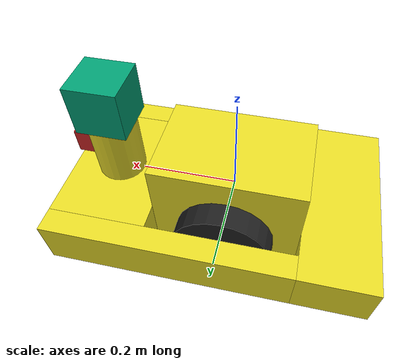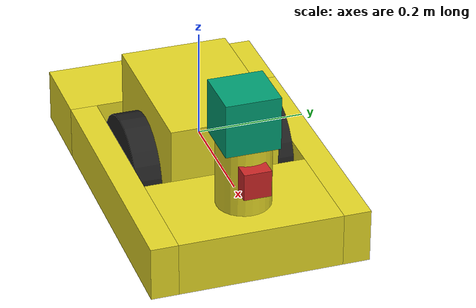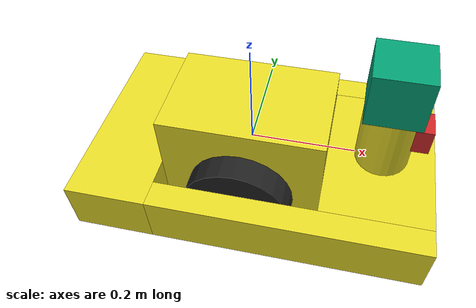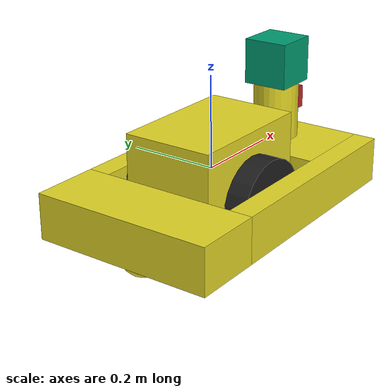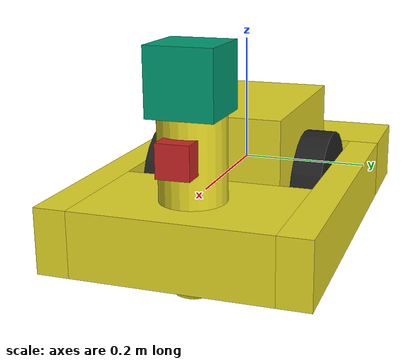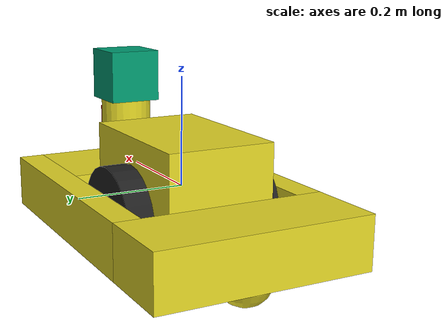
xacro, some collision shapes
<?xml version='1.0'?>

<robot name="my_robot3" xmlns:xacro="http://www.ros.org/wiki/xacro">

<gazebo reference="left_wheel">
    <material>Gazebo/Black</material>
</gazebo>

<gazebo reference="right_wheel">
    <material>Gazebo/Black</material>
</gazebo>

<gazebo reference="chassis">
    <material>Gazebo/Yellow</material>
</gazebo>

<gazebo reference="tower_chassis">
    <material>Gazebo/Yellow</material>
</gazebo>

<gazebo reference="chassis_rear_lane">
    <material>Gazebo/Yellow</material>
</gazebo>

<gazebo reference="chassis_right_lane">
    <material>Gazebo/Yellow</material>
</gazebo>

<gazebo reference="chassis_left_lane">
    <material>Gazebo/Yellow</material>
</gazebo>

<gazebo reference="tower">
    <material>Gazebo/Yellow</material>
</gazebo>

<gazebo reference="camera">
    <material>Gazebo/Red</material>
</gazebo>

  <xacro:include filename="$(find my_robot)/urdf/my_robot3.gazebo" />

  <link name="robot_footprint"></link>

  <joint name="robot_footprint_joint" type="fixed">
    <origin xyz="0 0 0" rpy="0 0 0" />
    <parent link="robot_footprint"/>
    <child link="chassis" />
  </joint>

  <joint name="tower_joint" type="fixed">
    <origin xyz="0 0 .125" rpy="0 0 0" />
    <parent link="tower_chassis"/>
    <child link="tower" />
  </joint>

  <joint name="tower_chassis_joint" type="fixed">
    <origin xyz=".25 0 -.05" rpy="0 0 0" />
    <parent link="chassis"/>
    <child link="tower_chassis" />
  </joint>

  <joint name="chassis_left_lane_joint" type="fixed">
    <origin xyz="-.15 .175 0" rpy="0 0 0"/>
    <axis xyz="1 1 1"/>
    <parent link="tower_chassis"/>
    <child link="chassis_left_lane"/>
  </joint>

  <joint name="chassis_right_lane_joint" type="fixed">
    <origin xyz="-.15 -.175 0" rpy="0 0 0"/>
    <axis xyz="1 1 1"/>
    <parent link="tower_chassis"/>
    <child link="chassis_right_lane"/>
  </joint>

  <joint name="chassis_rear_lane_joint" type="fixed">
    <origin xyz="-.225 0 -.05" rpy="0 0 0"/>
    <axis xyz="1 1 1"/>
    <parent link="chassis"/>
    <child link="chassis_rear_lane"/>
  </joint>

  <joint type="continuous" name="left_wheel_hinge">
    <origin xyz="0 0.125 -.05" rpy="0 0 0"/>
    <child link="left_wheel"/>
    <parent link="chassis"/>
    <axis xyz="0 1 0" rpy="0 0 0"/>
    <limit effort="10000" velocity="1000"/>
    <dynamics damping="1.0" friction="1.0"/>
  </joint>

  <joint type="continuous" name="right_wheel_hinge">
    <origin xyz="0 -0.125 -.05" rpy="0 0 0"/>
    <child link="right_wheel"/>
    <parent link="chassis"/>
    <axis xyz="0 1 0" rpy="0 0 0"/>
    <limit effort="10000" velocity="1000"/>
    <dynamics damping="1.0" friction="1.0"/>
  </joint>

  <joint name="camera_joint" type="fixed">
    <origin xyz=".05 0 0" rpy="0 0 0"/>
    <axis xyz="0 1 0"/>
    <parent link="tower"/>
    <child link="camera"/>
  </joint>

  <joint name="hokuyo_joint" type="fixed">
    <origin xyz="0 0 0.1" rpy="0 0 0"/>
    <axis xyz="0 1 0"/>
    <parent link="tower"/>
    <child link="hokuyo"/>
  </joint>

  <link name='chassis'>
    <pose>0 0 0.05 0 0 0</pose>

    <inertial>
      <mass value="15"/>
      <origin xyz="-.005 0 -0.027" rpy=" 0 0 0"/>
      <inertia
          ixx="0.1" ixy="0" ixz="0"
          iyy="0.1" iyz="0"
          izz="0.1"
      />
    </inertial>

    <collision name='chassis_collision'>
      <mass value="15"/>
      <origin xyz="0 0 0" rpy=" 0 0 0"/>
      <geometry>
        <box size=".3 .2 .2"/>
      </geometry>
    </collision>

    <visual name='chassis_visual'>
      <mass value="15"/>
      <origin xyz="0 0 0" rpy=" 0 0 0"/>
      <geometry>
        <box size=".3 .2 .2"/>
      </geometry>

    </visual>
  </link>

  <link name='chassis_left_lane'>
    <pose>0 0 0.05 0 0 0</pose>

    <inertial>
      <mass value="0.5"/>
      <origin xyz="0.0 0 -0.5" rpy=" 0 0 0"/>
      <inertia
          ixx="0.1" ixy="0" ixz="0"
          iyy="0.1" iyz="0"
          izz="0.1"
      />
    </inertial>

    <collision name='chassis_left_lane_collision'>
	<mass value="0.5"/>
      <origin xyz="0 0 0" rpy=" 0 0 0"/>
      <geometry>
        <box size=".5 .05 .1"/>
      </geometry>
    </collision>

    <visual name='chassis_left_lane_visual'>
	<mass value="0.5"/>
      <origin xyz="0 0 0" rpy=" 0 0 0"/>
      <geometry>
        <box size=".5 .05 .1"/>
      </geometry>

    </visual>
  </link>

  <link name='chassis_right_lane'>
    <pose>0 0 0.05 0 0 0</pose>

    <inertial>
      <mass value="0.5"/>
      <origin xyz="0.0 0 0" rpy=" 0 0 0"/>
      <inertia
          ixx="0.1" ixy="0" ixz="0"
          iyy="0.1" iyz="0"
          izz="0.1"
      />
    </inertial>

    <collision name='chassis_right_lane_collision'>
	<mass value="0.5"/>
      <origin xyz="0 0 0" rpy=" 0 0 0"/>
      <geometry>
        <box size=".5 .05 .1"/>
      </geometry>
    </collision>

    <visual name='chassis_right_lane_visual'>
	<mass value="0.5"/>
      <origin xyz="0 0 0" rpy=" 0 0 0"/>
      <geometry>
        <box size=".5 .05 .1"/>
      </geometry>

    </visual>
  </link>

  <link name='chassis_rear_lane'>
    <pose>0 0 0.05 0 0 0</pose>

    <inertial>
      <mass value="0.5"/>
      <origin xyz="0.0 0 0" rpy=" 0 0 0"/>
      <inertia
          ixx="0.1" ixy="0" ixz="0"
          iyy="0.1" iyz="0"
          izz="0.1"
      />
    </inertial>

    <collision name='chassis_rear_lane_collision'>
	 <mass value="0.5"/>
      <origin xyz="0 0 0" rpy=" 0 0 0"/>
      <geometry>
        <box size=".15 .4 .1"/>
      </geometry>
    </collision>

    <visual name='chassis_rear_lane_visual'>
 	<mass value="0.5"/>
      <origin xyz="0 0 0" rpy=" 0 0 0"/>
      <geometry>
        <box size=".15 .4 .1"/>
      </geometry>

    </visual>

    <collision name='rear_caster_collision'>
	<mass value="0"/>
      <origin xyz="0 0 -0.05" rpy=" 0 0 0"/>
      <geometry>
        <sphere radius="0.0499"/>
      </geometry>
    </collision>

    <visual name='rear_caster_visual'>
	<mass value="0"/>
      <origin xyz="0 0 -0.05" rpy=" 0 0 0"/>
      <geometry>
        <sphere radius="0.05"/>
      </geometry>
    </visual>

  </link>

  <link name='left_wheel'>
    <visual name='left_wheel_visual'>
	<origin xyz="0 0 0" rpy="0 1.5707 1.5707"/>
	<geometry>
		<cylinder radius="0.1" length="0.048"/>
	</geometry>

	<mass value="1.0"/>
	<inertia
          ixx="0.1" ixy="0" ixz="0"
          iyy="0.1" iyz="0"
          izz="0.1"
        />
     </visual>

    <collision name='left_wheel_collision'>
	<origin xyz="0 0 0" rpy="0 1.5707 1.5707"/>
	<geometry>
		<cylinder radius="0.1" length="0.048"/>
	</geometry>
	<mass value="1.0"/>
	<inertia
          ixx="0.1" ixy="0" ixz="0"
          iyy="0.1" iyz="0"
          izz="0.1"
        />
     </collision>

    <inertial name='left_wheel_inertial'>
	<origin xyz="0 0 0" rpy="0 1.5707 1.5707"/>
	<geometry>
		<cylinder radius="0.1" length="0.048"/>
	</geometry>
	<mass value="1.0"/>
	<inertia
          ixx="0.1" ixy="0" ixz="0"
          iyy="0.1" iyz="0"
          izz="0.1"
        />
     </inertial>
  </link>

  <link name='right_wheel'>
    <visual name='right_wheel_visual'>
	<origin xyz="0 0 0" rpy="0 1.5707 1.5707"/>
	<geometry>
		<cylinder radius="0.1" length="0.048"/>
	</geometry>

	<mass value="1.0"/>
	<inertia
          ixx="0.1" ixy="0" ixz="0"
          iyy="0.1" iyz="0"
          izz="0.1"
        />
     </visual>

    <collision name='right_wheel_collision'>
	<origin xyz="0 0 0" rpy="0 1.5707 1.5707"/>
	<geometry>
		<cylinder radius="0.1" length="0.048"/>
	</geometry>
	<mass value="1.0"/>
	<inertia
          ixx="0.1" ixy="0" ixz="0"
          iyy="0.1" iyz="0"
          izz="0.1"
        />
     </collision>

    <inertial name='right_wheel_inertial'>
	<origin xyz="0 0 0" rpy="0 1.5707 1.5707"/>
	<geometry>
		<cylinder radius="0.1" length="0.048"/>
	</geometry>
	<mass value="1.0"/>
	<inertia
          ixx="0.1" ixy="0" ixz="0"
          iyy="0.1" iyz="0"
          izz="0.1"
        />
     </inertial>
  </link>

  <link name='tower'>
    <visual name='tower_visual'>
      <origin xyz="0 0 0" rpy="0 0 0"/>
      <geometry>
        <cylinder radius="0.05" length="0.15"/>
      </geometry>

      <mass value="0.2"/>
      <inertia
              ixx="0.1" ixy="0" ixz="0"
              iyy="0.1" iyz="0"
              izz="0.1"
            />
    </visual>

    <collision name='tower_collision'>
      <origin xyz="0 0 0" rpy="0 0 0"/>
      <geometry>
        <cylinder radius="0.05" length="0.15"/>
      </geometry>
      <mass value="0.2"/>
      <inertia
              ixx="0.1" ixy="0" ixz="0"
              iyy="0.1" iyz="0"
              izz="0.1"
            />
    </collision>

    <inertial name='tower_inertial'>
      <origin xyz="0 0 0" rpy="0 0 0"/>
      <geometry>
        <cylinder radius="0.05" length="0.15"/>
      </geometry>
      <mass value="0.2"/>
      <inertia
              ixx="0.1" ixy="0" ixz="0"
              iyy="0.1" iyz="0"
              izz="0.1"
            />
    </inertial>
  </link>

<link name='tower_chassis'>
    <visual name='tower_visual'>
      <origin xyz="0 0 0" rpy="0 0 0"/>
      <geometry>
        <box size=".2 .3 .1"/>
      </geometry>

      <mass value="0.2"/>
      <inertia
              ixx="0.1" ixy="0" ixz="0"
              iyy="0.1" iyz="0"
              izz="0.1"
            />
    </visual>

    <collision name='tower_chassis_collision'>
      <origin xyz="0 0 0" rpy="0 0 0"/>
      <geometry>
        <box size=".2 .3 .1"/>
      </geometry>
      <mass value="0.2"/>
      <inertia
              ixx="0.1" ixy="0" ixz="0"
              iyy="0.1" iyz="0"
              izz="0.1"
            />
    </collision>

    <collision name='front_caster_collision'>
	<mass value="0"/>
      <origin xyz="0 0 -0.05" rpy=" 0 0 0"/>
      <geometry>
        <sphere radius="0.0499"/>
      </geometry>
    </collision>

    <visual name='front_caster_visual'>
	<mass value="0"/>
      <origin xyz="0 0 -0.05" rpy=" 0 0 0"/>
      <geometry>
        <sphere radius="0.05"/>
      </geometry>
    </visual>

    <inertial name='tower_chassis_inertial'>
      <origin xyz="0 0 0" rpy="0 0 0"/>
      <geometry>
        <box size=".2 .3 .1"/>
      </geometry>
      <mass value="0.2"/>
      <inertia
              ixx="0.1" ixy="0" ixz="0"
              iyy="0.1" iyz="0"
              izz="0.1"
            />
    </inertial>
  </link>

  <link name="camera">
    <visual name="camera_visual">
      <origin xyz="0 0 0" rpy="0 0 0"/>
      <geometry>
        <box size="0.05 0.05 0.05"/>
      </geometry>

      <mass value="0.1"/>
      <interia ixx="1e-6" ixy="0" ixz="0" iyy="1e-6" iyz="0" izz="1e-6"/>
    </visual>

    <collision name="camera_collision">
      <origin xyz="0 0 0" rpy="0 0 0"/>
      <geometry>
        <box size="0.05 0.05 0.05"/>
      </geometry>
      <mass value="0.1"/>
      <interia ixx="1e-6" ixy="0" ixz="0" iyy="1e-6" iyz="0" izz="1e-6"/>
    </collision>

    <interial name="camera_interia">
      <origin xyz="0 0 0" rpy="0 0 0"/>
      <geometry>
        <box size="0.05 0.05 0.05"/>
      </geometry>
      <mass value="0.1"/>
      <interia ixx="1e-6" ixy="0" ixz="0" iyy="1e-6" iyz="0" izz="1e-6"/>
    </interial>
  </link>

  <link name="hokuyo">
    <visual name="hokuyo_visual">
      <origin xyz="0 0 0" rpy="0 0 0"/>
      <geometry>
        <mesh filename="package://my_robot/meshes/hokuyo.dae"/>
      </geometry>

      <mass value="1e-5"/>
      <inertia ixx="1e-6" ixy="0" ixz="0" iyy="1e-6" iyz="0" izz="1e-6"/>
    </visual>

    <collision name="hokuyo_collision">
      <origin xyz="0 0 0" rpy="0 0 0"/>
      <geometry>
        <box size="0.1 0.1 0.1"/>
      </geometry>
      <mass value="1e-5"/>
      <inertia ixx="1e-6" ixy="0" ixz="0" iyy="1e-6" iyz="0" izz="1e-6"/>
    </collision>

    <inertial name="hokuyo_inertial">
      <origin xyz="0 0 0" rpy="0 0 0"/>
      <geometry>
        <box size="0.1 0.1 0.1"/>
      </geometry>
      <mass value="1e-5"/>
      <inertia ixx="1e-6" ixy="0" ixz="0" iyy="1e-6" iyz="0" izz="1e-6"/>
    </inertial>
  </link>

</robot>
